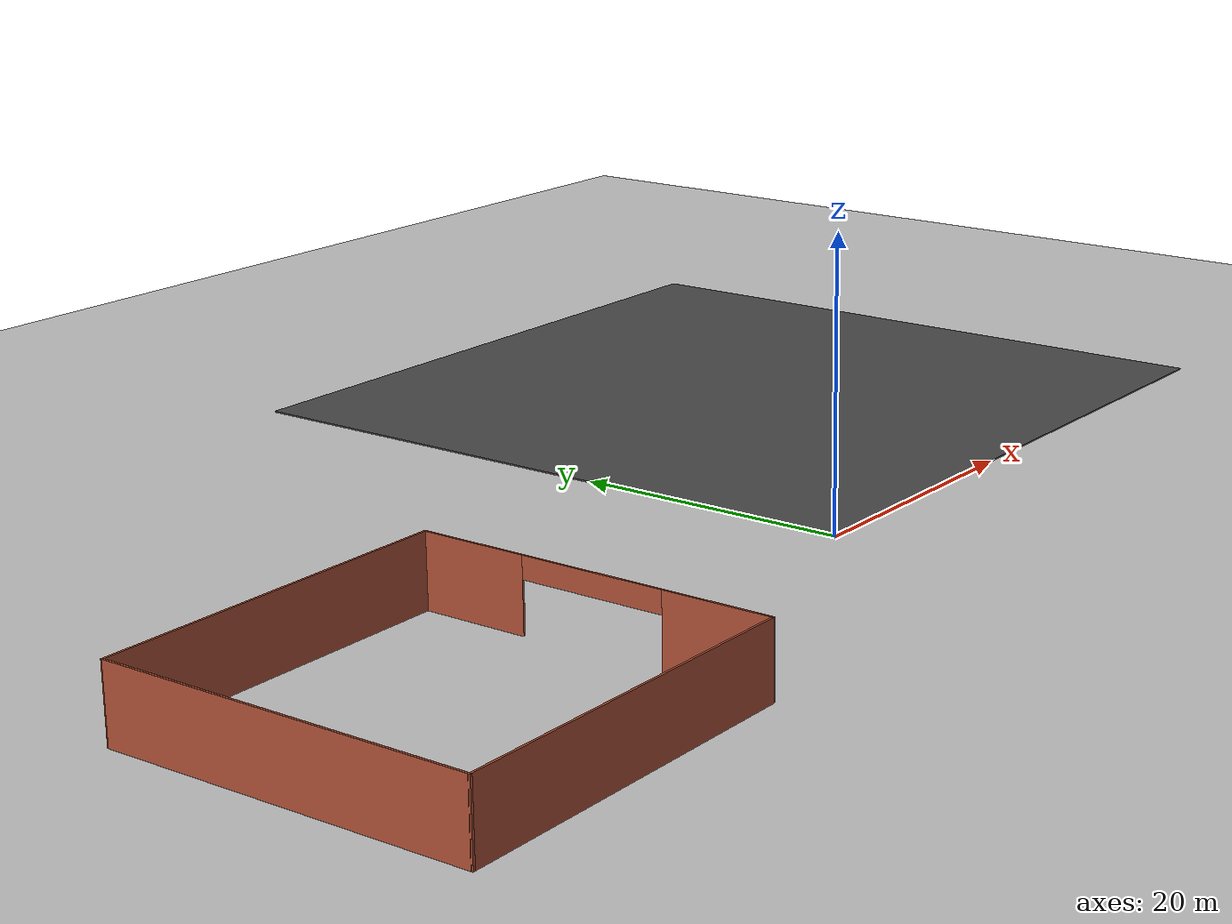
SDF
<sdf version="1.7">
 <world name="default">
  <model name="ground_plane">
   <static>1</static>
   <link name="link">
    <collision name="collision">
     <geometry><plane><normal>0 0 1</normal><size>100 100</size></plane></geometry>
     <surface>
      <contact><collide_bitmask>65535</collide_bitmask></contact>
      <friction><ode><mu>100</mu><mu2>50</mu2></ode></friction>
     </surface>
    </collision>
    <visual name="visual">
     <cast_shadows>0</cast_shadows>
     <geometry><plane><normal>0 0 1</normal><size>100 100</size></plane></geometry>
     <material>
      <script><uri>file://media/materials/scripts/gazebo.material</uri><name>Gazebo/Grey</name></script>
     </material>
    </visual>
   </link>
  </model>
  <model name="asphalt_plane">
   <link name="link">
    <inertial>
     <mass>1</mass>
     <inertia><ixx>1</ixx><ixy>0</ixy><ixz>0</ixz><iyy>1</iyy><iyz>0</iyz><izz>1</izz></inertia>
    </inertial>
    <visual name="visual">
     <cast_shadows>0</cast_shadows>
     <geometry><box><size>50 50 0.1</size></box></geometry>
     <material>
      <script>
       <uri>model://asphalt_plane/materials/scripts</uri>
       <uri>model://asphalt_plane/materials/textures</uri>
       <name>vrc/asphalt</name>
      </script>
      <shader type="pixel"><normal_map>__default__</normal_map></shader>
      <ambient>0.5 0.5 0.5 1</ambient>
      <diffuse>0.5 0.5 0.5 1</diffuse>
      <specular>0.2 0.2 0.2 1</specular>
      <emissive>0 0 0 1</emissive>
     </material>
    </visual>
    <collision name="collision">
     <geometry><box><size>50 50 0.1</size></box></geometry>
     <surface>
      <friction>
       <ode><mu>1</mu><mu2>1</mu2><fdir1>0 0 0</fdir1><slip1>0</slip1><slip2>0</slip2></ode>
       <torsional>
        <coefficient>1</coefficient>
        <patch_radius>0</patch_radius>
        <surface_radius>0</surface_radius>
        <use_patch_radius>1</use_patch_radius>
        <ode><slip>0</slip></ode>
       </torsional>
      </friction>
      <bounce><restitution_coefficient>0</restitution_coefficient><threshold>1e+06</threshold></bounce>
      <contact>
       <collide_without_contact>0</collide_without_contact>
       <collide_without_contact_bitmask>1</collide_without_contact_bitmask>
       <collide_bitmask>1</collide_bitmask>
       <ode>
        <soft_cfm>0</soft_cfm>
        <soft_erp>0.2</soft_erp>
        <kp>1e+13</kp>
        <kd>1</kd>
        <max_vel>0.01</max_vel>
        <min_depth>0</min_depth>
       </ode>
       <bullet>
        <split_impulse>1</split_impulse>
        <split_impulse_penetration_threshold>-0.01</split_impulse_penetration_threshold>
        <soft_cfm>0</soft_cfm>
        <soft_erp>0.2</soft_erp>
        <kp>1e+13</kp>
        <kd>1</kd>
       </bullet>
      </contact>
     </surface>
    </collision>
   </link>
   <static>1</static>
   <pose>25 25 0 0 -0 0</pose>
  </model>
  <model name="galpao">
   <link name="Wall_1">
    <pose>0 12.4246 0 0 -0 0.002696</pose>
    <visual name="Wall_1_Visual">
     <pose>0 0 2.5 0 -0 0</pose>
     <geometry><box><size>25 0.15 5</size></box></geometry>
     <material>
      <script><uri>file://media/materials/scripts/gazebo.material</uri><name>Gazebo/Bricks</name></script>
      <ambient>1 1 1 1</ambient>
      <shader type="pixel"/>
     </material>
     <meta><layer>0</layer></meta>
    </visual>
    <collision name="Wall_1_Collision">
     <pose>0 0 2.5 0 -0 0</pose>
     <geometry><box><size>25 0.15 5</size></box></geometry>
     <surface>
      <friction>
       <ode><mu>1</mu><mu2>1</mu2><fdir1>0 0 0</fdir1><slip1>0</slip1><slip2>0</slip2></ode>
       <torsional>
        <coefficient>1</coefficient>
        <patch_radius>0</patch_radius>
        <surface_radius>0</surface_radius>
        <use_patch_radius>1</use_patch_radius>
        <ode><slip>0</slip></ode>
       </torsional>
      </friction>
      <bounce><restitution_coefficient>0</restitution_coefficient><threshold>1e+06</threshold></bounce>
      <contact>
       <collide_without_contact>0</collide_without_contact>
       <collide_without_contact_bitmask>1</collide_without_contact_bitmask>
       <collide_bitmask>1</collide_bitmask>
       <ode>
        <soft_cfm>0</soft_cfm>
        <soft_erp>0.2</soft_erp>
        <kp>1e+13</kp>
        <kd>1</kd>
        <max_vel>0.01</max_vel>
        <min_depth>0</min_depth>
       </ode>
       <bullet>
        <split_impulse>1</split_impulse>
        <split_impulse_penetration_threshold>-0.01</split_impulse_penetration_threshold>
        <soft_cfm>0</soft_cfm>
        <soft_erp>0.2</soft_erp>
        <kp>1e+13</kp>
        <kd>1</kd>
       </bullet>
      </contact>
     </surface>
    </collision>
   </link>
   <link name="Wall_2">
    <pose>12.425 0.033073 0 0 0 -1.5708</pose>
    <inertial>
     <mass>1</mass>
     <inertia><ixx>1</ixx><ixy>0</ixy><ixz>0</ixz><iyy>1</iyy><iyz>0</iyz><izz>1</izz></inertia>
    </inertial>
    <visual name="Wall_2_Visual_0">
     <pose>-8.75 0 2.5 0 -0 0</pose>
     <geometry><box><size>7.5 0.15 5</size></box></geometry>
     <material>
      <script><uri>file://media/materials/scripts/gazebo.material</uri><name>Gazebo/Bricks</name></script>
      <ambient>1 1 1 1</ambient>
      <shader type="pixel"><normal_map>__default__</normal_map></shader>
      <diffuse>1 1 1 1</diffuse>
      <specular>0.2 0.2 0.2 1</specular>
      <emissive>0 0 0 1</emissive>
     </material>
     <meta><layer>0</layer></meta>
    </visual>
    <visual name="Wall_2_Visual_1">
     <pose>8.75 0 2.5 0 -0 0</pose>
     <geometry><box><size>7.5 0.15 5</size></box></geometry>
     <material>
      <script><uri>file://media/materials/scripts/gazebo.material</uri><name>Gazebo/Bricks</name></script>
      <ambient>1 1 1 1</ambient>
      <shader type="pixel"><normal_map>__default__</normal_map></shader>
      <diffuse>1 1 1 1</diffuse>
      <specular>0.2 0.2 0.2 1</specular>
      <emissive>0 0 0 1</emissive>
     </material>
     <meta><layer>0</layer></meta>
    </visual>
    <visual name="Wall_2_Visual_2">
     <pose>0 0 4.25 0 -0 0</pose>
     <geometry><box><size>10 0.15 1.5</size></box></geometry>
     <material>
      <script><uri>file://media/materials/scripts/gazebo.material</uri><name>Gazebo/Bricks</name></script>
      <ambient>1 1 1 1</ambient>
      <shader type="pixel"><normal_map>__default__</normal_map></shader>
      <diffuse>1 1 1 1</diffuse>
      <specular>0.2 0.2 0.2 1</specular>
      <emissive>0 0 0 1</emissive>
     </material>
     <meta><layer>0</layer></meta>
    </visual>
    <collision name="Wall_2_Collision_0">
     <pose>-8.75 0 2.5 0 -0 0</pose>
     <geometry><box><size>7.5 0.15 5</size></box></geometry>
     <surface>
      <friction>
       <ode><mu>1</mu><mu2>1</mu2><fdir1>0 0 0</fdir1><slip1>0</slip1><slip2>0</slip2></ode>
       <torsional>
        <coefficient>1</coefficient>
        <patch_radius>0</patch_radius>
        <surface_radius>0</surface_radius>
        <use_patch_radius>1</use_patch_radius>
        <ode><slip>0</slip></ode>
       </torsional>
      </friction>
      <bounce><restitution_coefficient>0</restitution_coefficient><threshold>1e+06</threshold></bounce>
      <contact>
       <collide_without_contact>0</collide_without_contact>
       <collide_without_contact_bitmask>1</collide_without_contact_bitmask>
       <collide_bitmask>1</collide_bitmask>
       <ode>
        <soft_cfm>0</soft_cfm>
        <soft_erp>0.2</soft_erp>
        <kp>1e+13</kp>
        <kd>1</kd>
        <max_vel>0.01</max_vel>
        <min_depth>0</min_depth>
       </ode>
       <bullet>
        <split_impulse>1</split_impulse>
        <split_impulse_penetration_threshold>-0.01</split_impulse_penetration_threshold>
        <soft_cfm>0</soft_cfm>
        <soft_erp>0.2</soft_erp>
        <kp>1e+13</kp>
        <kd>1</kd>
       </bullet>
      </contact>
     </surface>
    </collision>
    <collision name="Wall_2_Collision_1">
     <pose>8.75 0 2.5 0 -0 0</pose>
     <geometry><box><size>7.5 0.15 5</size></box></geometry>
     <surface>
      <friction>
       <ode><mu>1</mu><mu2>1</mu2><fdir1>0 0 0</fdir1><slip1>0</slip1><slip2>0</slip2></ode>
       <torsional>
        <coefficient>1</coefficient>
        <patch_radius>0</patch_radius>
        <surface_radius>0</surface_radius>
        <use_patch_radius>1</use_patch_radius>
        <ode><slip>0</slip></ode>
       </torsional>
      </friction>
      <bounce><restitution_coefficient>0</restitution_coefficient><threshold>1e+06</threshold></bounce>
      <contact>
       <collide_without_contact>0</collide_without_contact>
       <collide_without_contact_bitmask>1</collide_without_contact_bitmask>
       <collide_bitmask>1</collide_bitmask>
       <ode>
        <soft_cfm>0</soft_cfm>
        <soft_erp>0.2</soft_erp>
        <kp>1e+13</kp>
        <kd>1</kd>
        <max_vel>0.01</max_vel>
        <min_depth>0</min_depth>
       </ode>
       <bullet>
        <split_impulse>1</split_impulse>
        <split_impulse_penetration_threshold>-0.01</split_impulse_penetration_threshold>
        <soft_cfm>0</soft_cfm>
        <soft_erp>0.2</soft_erp>
        <kp>1e+13</kp>
        <kd>1</kd>
       </bullet>
      </contact>
     </surface>
    </collision>
    <collision name="Wall_2_Collision_2">
     <pose>0 0 4.25 0 -0 0</pose>
     <geometry><box><size>10 0.15 1.5</size></box></geometry>
     <surface>
      <friction>
       <ode><mu>1</mu><mu2>1</mu2><fdir1>0 0 0</fdir1><slip1>0</slip1><slip2>0</slip2></ode>
       <torsional>
        <coefficient>1</coefficient>
        <patch_radius>0</patch_radius>
        <surface_radius>0</surface_radius>
        <use_patch_radius>1</use_patch_radius>
        <ode><slip>0</slip></ode>
       </torsional>
      </friction>
      <bounce><restitution_coefficient>0</restitution_coefficient><threshold>1e+06</threshold></bounce>
      <contact>
       <collide_without_contact>0</collide_without_contact>
       <collide_without_contact_bitmask>1</collide_without_contact_bitmask>
       <collide_bitmask>1</collide_bitmask>
       <ode>
        <soft_cfm>0</soft_cfm>
        <soft_erp>0.2</soft_erp>
        <kp>1e+13</kp>
        <kd>1</kd>
        <max_vel>0.01</max_vel>
        <min_depth>0</min_depth>
       </ode>
       <bullet>
        <split_impulse>1</split_impulse>
        <split_impulse_penetration_threshold>-0.01</split_impulse_penetration_threshold>
        <soft_cfm>0</soft_cfm>
        <soft_erp>0.2</soft_erp>
        <kp>1e+13</kp>
        <kd>1</kd>
       </bullet>
      </contact>
     </surface>
    </collision>
   </link>
   <link name="Wall_3">
    <pose>-12.425 -0.033427 0 0 0 -1.5708</pose>
    <visual name="Wall_3_Visual">
     <pose>0 0 2.5 0 -0 0</pose>
     <geometry><box><size>24.9997 0.15 5</size></box></geometry>
     <material>
      <script><uri>file://media/materials/scripts/gazebo.material</uri><name>Gazebo/Bricks</name></script>
      <ambient>1 1 1 1</ambient>
      <shader type="pixel"/>
     </material>
     <meta><layer>0</layer></meta>
    </visual>
    <collision name="Wall_3_Collision">
     <pose>0 0 2.5 0 -0 0</pose>
     <geometry><box><size>24.9997 0.15 5</size></box></geometry>
     <surface>
      <friction>
       <ode><mu>1</mu><mu2>1</mu2><fdir1>0 0 0</fdir1><slip1>0</slip1><slip2>0</slip2></ode>
       <torsional>
        <coefficient>1</coefficient>
        <patch_radius>0</patch_radius>
        <surface_radius>0</surface_radius>
        <use_patch_radius>1</use_patch_radius>
        <ode><slip>0</slip></ode>
       </torsional>
      </friction>
      <bounce><restitution_coefficient>0</restitution_coefficient><threshold>1e+06</threshold></bounce>
      <contact>
       <collide_without_contact>0</collide_without_contact>
       <collide_without_contact_bitmask>1</collide_without_contact_bitmask>
       <collide_bitmask>1</collide_bitmask>
       <ode>
        <soft_cfm>0</soft_cfm>
        <soft_erp>0.2</soft_erp>
        <kp>1e+13</kp>
        <kd>1</kd>
        <max_vel>0.01</max_vel>
        <min_depth>0</min_depth>
       </ode>
       <bullet>
        <split_impulse>1</split_impulse>
        <split_impulse_penetration_threshold>-0.01</split_impulse_penetration_threshold>
        <soft_cfm>0</soft_cfm>
        <soft_erp>0.2</soft_erp>
        <kp>1e+13</kp>
        <kd>1</kd>
       </bullet>
      </contact>
     </surface>
    </collision>
   </link>
   <link name="Wall_4">
    <pose>0 -12.4249 0 0 -0 0.002656</pose>
    <visual name="Wall_4_Visual">
     <pose>0 0 2.5 0 -0 0</pose>
     <geometry><box><size>25 0.15 5</size></box></geometry>
     <material>
      <script><uri>file://media/materials/scripts/gazebo.material</uri><name>Gazebo/Bricks</name></script>
      <ambient>1 1 1 1</ambient>
      <shader type="pixel"/>
     </material>
     <meta><layer>0</layer></meta>
    </visual>
    <collision name="Wall_4_Collision">
     <pose>0 0 2.5 0 -0 0</pose>
     <geometry><box><size>25 0.15 5</size></box></geometry>
     <surface>
      <friction>
       <ode><mu>1</mu><mu2>1</mu2><fdir1>0 0 0</fdir1><slip1>0</slip1><slip2>0</slip2></ode>
       <torsional>
        <coefficient>1</coefficient>
        <patch_radius>0</patch_radius>
        <surface_radius>0</surface_radius>
        <use_patch_radius>1</use_patch_radius>
        <ode><slip>0</slip></ode>
       </torsional>
      </friction>
      <bounce><restitution_coefficient>0</restitution_coefficient><threshold>1e+06</threshold></bounce>
      <contact>
       <collide_without_contact>0</collide_without_contact>
       <collide_without_contact_bitmask>1</collide_without_contact_bitmask>
       <collide_bitmask>1</collide_bitmask>
       <ode>
        <soft_cfm>0</soft_cfm>
        <soft_erp>0.2</soft_erp>
        <kp>1e+13</kp>
        <kd>1</kd>
        <max_vel>0.01</max_vel>
        <min_depth>0</min_depth>
       </ode>
       <bullet>
        <split_impulse>1</split_impulse>
        <split_impulse_penetration_threshold>-0.01</split_impulse_penetration_threshold>
        <soft_cfm>0</soft_cfm>
        <soft_erp>0.2</soft_erp>
        <kp>1e+13</kp>
        <kd>1</kd>
       </bullet>
      </contact>
     </surface>
    </collision>
   </link>
   <static>1</static>
   <pose>-37.5 -0 0 0 -0 0</pose>
  </model>
 </world>
</sdf>
